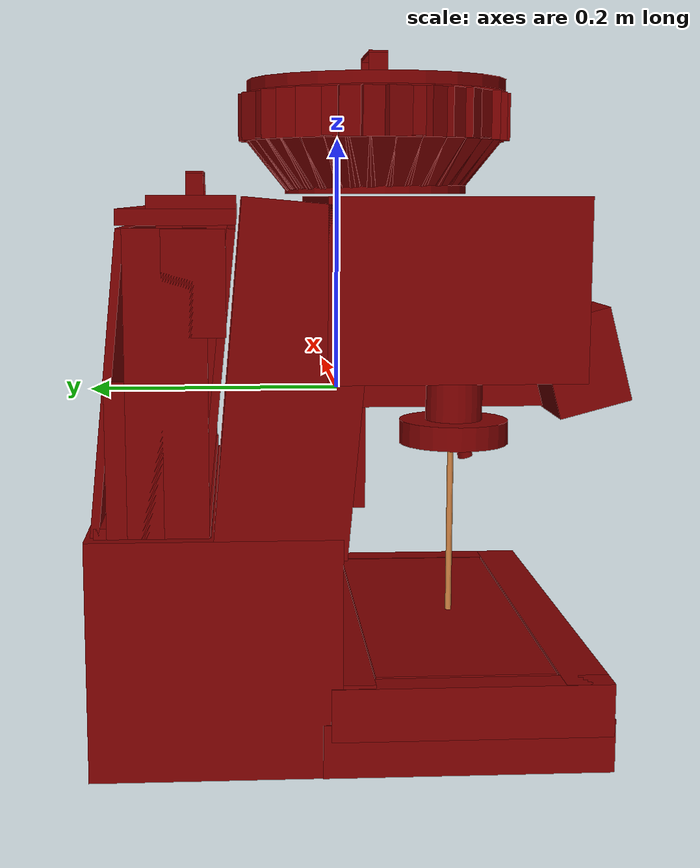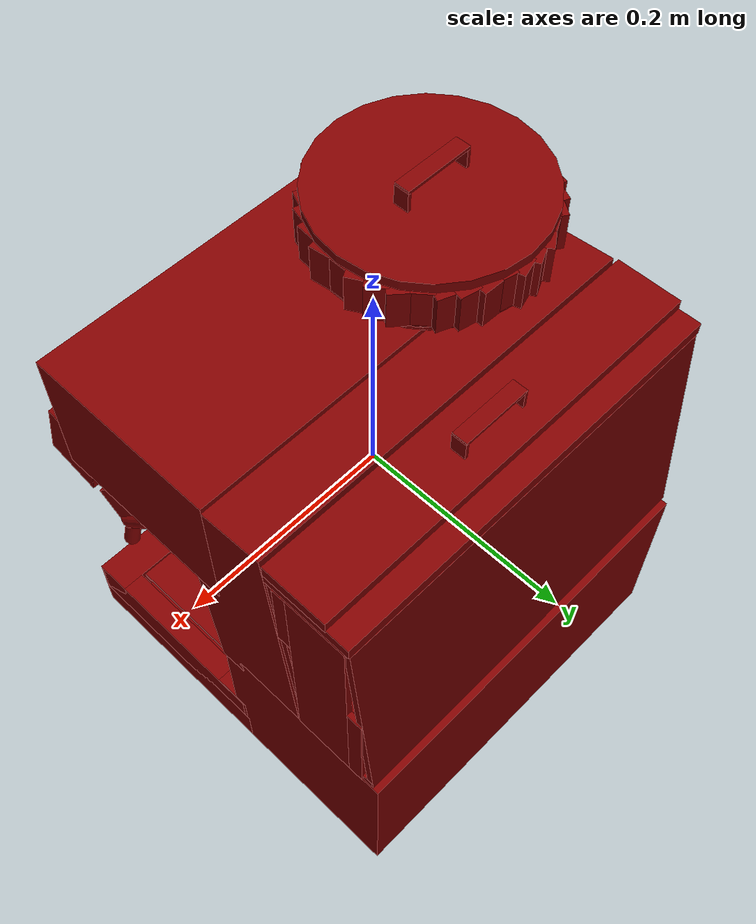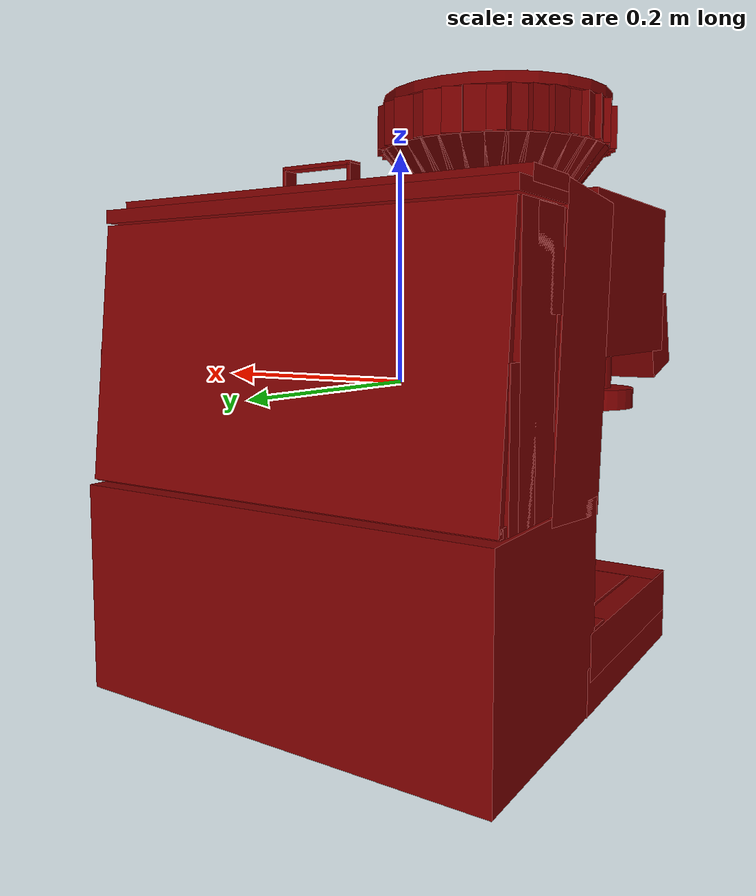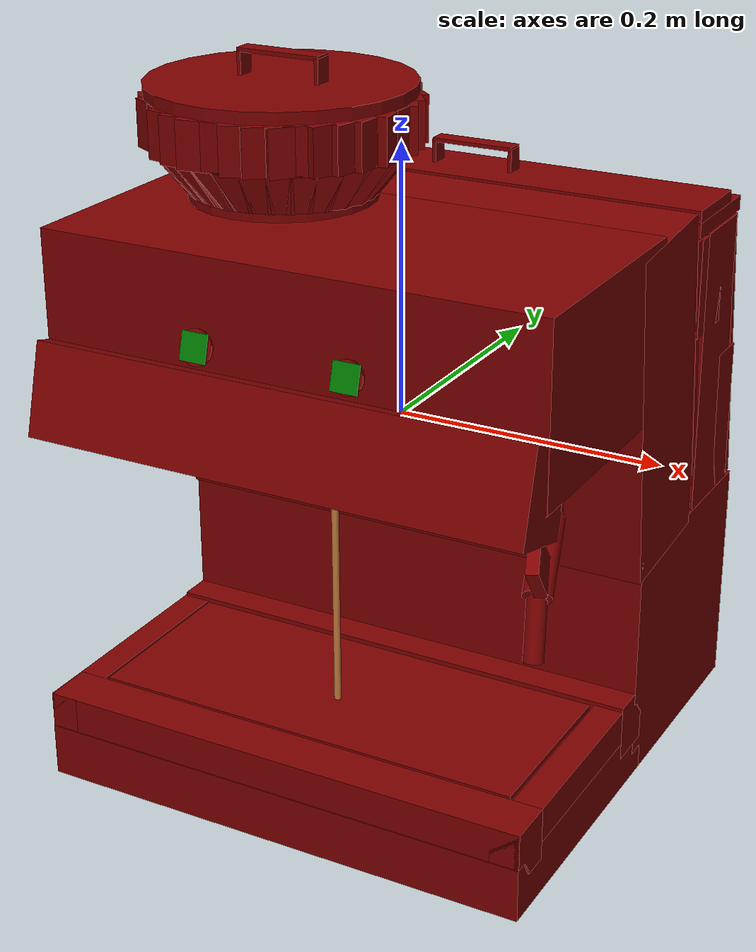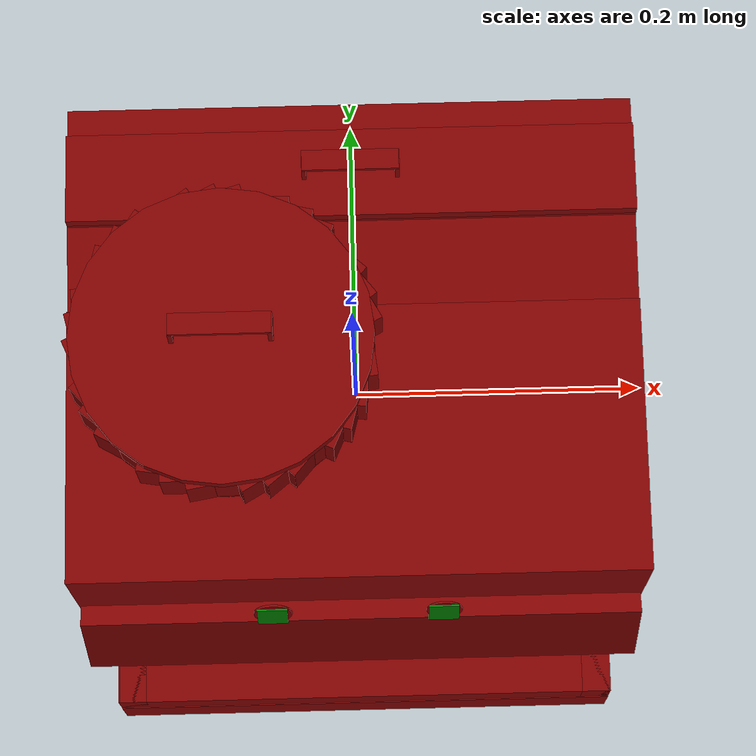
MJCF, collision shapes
<?xml version='1.0' encoding='UTF-8'?>
<mujoco model="model">
  <compiler angle="radian"/>
  <asset>
    <mesh file="visuals/Body001.obj" name="Body001_vis"/>
    <mesh file="visuals/Button001.obj" name="Button001_vis"/>
    <mesh file="visuals/Button002.obj" name="Button002_vis"/>
    <mesh file="visuals/Container001.obj" name="Container001_vis"/>
    <mesh file="visuals/Container002_Clear.obj" name="Container002_Clear_vis"/>
    <mesh file="visuals/Lever001.obj" name="Lever001_vis"/>
    <mesh file="visuals/Lid001.obj" name="Lid001_vis"/>
    <mesh file="visuals/Lid002.obj" name="Lid002_vis"/>
    <mesh file="visuals/Lid003.obj" name="Lid003_vis"/>
    <texture file="visuals/T_BC001.png" name="Body001_material" type="2d"/>
    <material name="Body001_material" rgba="1 1 1 1.0" texture="Body001_material" shininess="0.2512328028678894" specular="0.3103448502657381"/>
    <texture file="visuals/T_BC001.png" name="Button001_material" type="2d"/>
    <material name="Button001_material" rgba="1 1 1 1.0" texture="Button001_material" shininess="0.2512328028678894" specular="0.3103448502657381"/>
    <texture file="visuals/T_BC001.png" name="Button002_material" type="2d"/>
    <material name="Button002_material" rgba="1 1 1 1.0" texture="Button002_material" shininess="0.2512328028678894" specular="0.3103448502657381"/>
    <texture file="visuals/T_BC001.png" name="Container001_material" type="2d"/>
    <material name="Container001_material" rgba="1 1 1 1.0" texture="Container001_material" shininess="0.2512328028678894" specular="0.3103448502657381"/>
    <texture file="visuals/T_BC001.png" name="Lid003_material" type="2d"/>
    <material name="Lid003_material" rgba="1 1 1 1.0" texture="Lid003_material" shininess="0.2512328028678894" specular="0.3103448502657381"/>
    <texture file="visuals/T_BC001.png" name="Container002_Clear_material" type="2d"/>
    <material name="Container002_Clear_material" rgba="1 1 1 0.09661836922168732" texture="Container002_Clear_material" shininess="0.2512328028678894" specular="0.3103448502657381"/>
    <texture file="visuals/T_BC001.png" name="Lid002_material" type="2d"/>
    <material name="Lid002_material" rgba="1 1 1 1.0" texture="Lid002_material" shininess="0.2512328028678894" specular="0.3103448502657381"/>
    <texture file="visuals/T_BC001.png" name="Lever001_material" type="2d"/>
    <material name="Lever001_material" rgba="1 1 1 1.0" texture="Lever001_material" shininess="0.2512328028678894" specular="0.3103448502657381"/>
    <texture file="visuals/T_BC001.png" name="Lid001_material" type="2d"/>
    <material name="Lid001_material" rgba="1 1 1 1.0" texture="Lid001_material" shininess="0.2512328028678894" specular="0.3103448502657381"/>
  </asset>
  <default>
    <default class="visual">
      <geom conaffinity="0" contype="0" group="1" type="mesh"/>
    </default>
    <default class="collision">
      <geom group="0" rgba="0.5 0 0 0.5"/>
    </default>
    <default class="spawn">
      <geom group="0" rgba="1 1 1 0.5" contype="0" conaffinity="0"/>
      <site group="0" rgba="1 1 1 0.5"/>
    </default>
    <default class="region">
      <geom group="1" conaffinity="0" contype="0" rgba="0 1 0 0"/>
    </default>
  </default>
  <worldbody>
    <body>
      <body name="object">
        <geom class="collision" type="box" pos="-0.05731553956866264 -0.17489486932754517 0.09781280159950256" size="0.009943759068846703 0.0005993127706460655 0.009943758137524128" quat="0.9915480613708496 -0.1297398954629898 -0.0 0.0" name="start_button_1" rgba="0.0 0.5 0 0.5"/>
        <geom class="collision" type="box" pos="0.055036868900060654 -0.17489486932754517 0.09781280159950256" size="0.009943759068846703 0.0005993127706460655 0.009943758137524128" quat="0.9915480613708496 -0.1297398954629898 -0.0 0.0" name="start_button_2" rgba="0.0 0.5 0 0.5"/>
        <site type="cylinder" rgba="0.8 0.5 0.25 1" size="0.002555632498115301 0.0979219377040863" pos="-0.001240234705619514 -0.09453067928552628 -0.11024720966815948" name="coffee_liquid"/>
        <site rgba="0 0 0 0" size="0.009999999776482582 0.009999999776482582" pos="-0.0015502932947129011 -0.09508466720581055 -0.1918620616197586" name="receptacle_place_site"/>
        <geom mesh="Body001_vis" type="mesh" solimp="0.998 0.998 0.001" solref="0.001 1" density="100" friction="0.95 0.3 0.1" class="visual" material="Body001_material"/>
        <geom class="collision" type="box" pos="0.0005956803215667605 0.09847386926412582 -0.1688809096813202" size="0.18726329505443573 0.09017781913280487 0.08746477961540222" quat="1.0 0.0 0.0 0.0"/>
        <geom class="collision" type="box" pos="0.0002870087046176195 -0.08299246430397034 -0.2364640086889267" size="0.1875719577074051 0.10524700582027435 0.019881682470440865" quat="1.0 0.0 0.0 0.0"/>
        <geom class="collision" type="box" pos="0.0005956803215667605 -0.16965270042419434 -0.2097156047821045" size="0.18726329505443573 0.017785146832466125 0.019688216969370842" quat="1.0 0.0 0.0 0.0"/>
        <geom class="collision" type="box" pos="0.17701773345470428 -0.08536890894174576 -0.2097156047821045" size="0.010841228999197483 0.1020689383149147 0.019688216969370842" quat="1.0 0.0 0.0 0.0"/>
        <geom class="collision" type="box" pos="-0.17702330648899078 -0.08536890894174576 -0.2097156047821045" size="0.010465281084179878 0.1020689383149147 0.019688216969370842" quat="1.0 0.0 0.0 0.0"/>
        <geom class="collision" type="box" pos="0.0005956803215667605 0.002601444721221924 -0.208379864692688" size="0.18726329505443573 0.017785146832466125 0.02102394960820675" quat="1.0 0.0 0.0 0.0"/>
        <geom class="collision" type="box" pos="0.0005956803215667605 0.04139527305960655 0.029322773218154907" size="0.18726329505443573 0.04702402651309967 0.1219869926571846" quat="0.998981237411499 0.04512740299105644 0.0 0.0"/>
        <geom class="collision" type="box" pos="-0.06237511709332466 0.02061018906533718 -0.03055974468588829" size="0.05326209217309952 0.0336286835372448 0.044288747012615204" quat="1.0 0.0 0.0 0.0"/>
        <geom class="collision" type="box" pos="0.0005956803215667605 -0.07070866972208023 0.09099208563566208" size="0.18726329505443573 0.09017781913280487 0.06404579430818558" quat="1.0 0.0 0.0 0.0"/>
        <geom class="collision" type="box" pos="0.0010465611703693867 -0.07070866972208023 0.06718286871910095" size="0.13032084703445435 0.09017781913280487 0.06404579430818558" quat="1.0 0.0 0.0 0.0"/>
        <geom class="collision" type="box" pos="0.0005956803215667605 -0.15853410959243774 0.04096051678061485" size="0.18604809045791626 0.0257794838398695 0.03353458270430565" quat="0.991567850112915 -0.12958873808383942 -0.0 0.0"/>
        <geom class="collision" type="cylinder" pos="-0.14710915088653564 -0.07347169518470764 0.013286512345075607" size="0.020273976027965546 0.020273976027965546" quat="1.0 0.0 0.0 0.0"/>
        <geom class="collision" type="cylinder" pos="-0.0007574863266199827 -0.09521698206663132 -0.010232677683234215" size="0.011889209970831871 0.005160138476639986" quat="1.0 0.0 0.0 0.0"/>
        <geom class="collision" type="cylinder" pos="-0.0007574864430353045 -0.09521698206663132 0.0003547324158716947" size="0.015668664127588272 0.005908631253987551" quat="1.0 0.0 0.0 0.0"/>
        <geom class="collision" type="cylinder" pos="-0.14710913598537445 -0.07347169518470764 -0.011658534407615662" size="0.03898880258202553 0.008481523022055626" quat="1.0 0.0 0.0 0.0"/>
        <body name="Button001">
          <joint axis="0.0 0.9654118418693542 -0.26072958111763" pos="-0.05705320090055466 -0.17481987178325653 0.09768670052289963" limited="true" name="Button001_joint" range="0.0 0.001" type="slide" damping="1" frictionloss="1" armature=".01" stiffness="0.2" springref="-0.1"/>
          <geom mesh="Button001_vis" type="mesh" solimp="0.998 0.998 0.001" solref="0.001 1" density="100" friction="0.95 0.3 0.1" class="visual" material="Button001_material"/>
          <geom class="collision" type="cylinder" pos="-0.05699922516942024 -0.17273665964603424 0.09711688756942749" size="0.012503908947110176 0.0008548264158889651" quat="0.7843735814094543 0.6202887296676636 0.0 0.0"/>
        </body>
        <body name="Button002">
          <joint axis="0.0 0.969615638256073 -0.2446330189704895" pos="0.05544610321521759 -0.17480553686618805 0.09767358005046844" limited="true" name="Button002_joint" range="0.0 0.001" type="slide" damping="1" frictionloss="1" armature=".01" stiffness="0.2" springref="-0.1"/>
          <geom mesh="Button002_vis" type="mesh" solimp="0.998 0.998 0.001" solref="0.001 1" density="100" friction="0.95 0.3 0.1" class="visual" material="Button002_material"/>
          <geom class="collision" type="cylinder" pos="0.05548488348722458 -0.17290781438350677 0.09739619493484497" size="0.011679901741445065 0.0007984933909028769" quat="0.7843735814094543 0.6202887296676636 0.0 0.0"/>
        </body>
        <body name="Container001">
          <joint axis="0.0 0.0 1.0" pos="-0.08088400959968567 -0.021134506911039352 0.1826155036687851" limited="true" name="Container001_joint" range="0.0 0.05" type="slide" damping="1" frictionloss="1" armature=".01" stiffness="0.05"/>
          <geom mesh="Container001_vis" type="mesh" solimp="0.998 0.998 0.001" solref="0.001 1" density="100" friction="0.95 0.3 0.1" class="visual" material="Container001_material"/>
          <geom class="collision" type="cylinder" pos="-0.08120039105415344 -0.022443460300564766 0.15976351499557495" size="0.06728342175483704 0.0029134033247828484" quat="1.0 0.0 0.0 0.0"/>
          <geom class="collision" type="box" pos="0.011045917868614197 -0.0210826825350523 0.21189676225185394" size="0.0025177588686347008 0.008883832022547722 0.016946708783507347" quat="1.0 0.0 0.0 0.0"/>
          <geom class="collision" type="box" pos="-0.003041110932826996 -0.0210826825350523 0.17911913990974426" size="0.0025177588686347008 0.008883832022547722 0.02360411360859871" quat="0.9425100684165955 0.0 0.33417776226997375 0.0"/>
          <geom class="collision" type="box" pos="0.00973470788449049 -0.005611563101410866 0.21189676225185394" size="0.005319920834153891 0.009216169826686382 0.016946708783507347" quat="0.9680494666099548 0.0 0.0 0.2507592737674713"/>
          <geom class="collision" type="box" pos="0.006011629011482 0.008921580389142036 0.21189676225185394" size="0.005319920834153891 0.009216169826686382 0.016946708783507347" quat="0.9443601369857788 0.0 0.0 0.32891324162483215"/>
          <geom class="collision" type="box" pos="-0.0005275303265079856 0.023570934310555458 0.21189676225185394" size="0.005319920834153891 0.009216169826686382 0.016946708783507347" quat="0.9120593070983887 0.0 0.0 0.41005831956863403"/>
          <geom class="collision" type="box" pos="-0.009962059557437897 0.0374082550406456 0.21189676225185394" size="0.0025177588686347008 0.008883832022547722 0.016946708783507347" quat="0.9411371946334839 0.0 0.0 0.33802488446235657"/>
          <geom class="collision" type="box" pos="-0.020817214623093605 0.048509631305933 0.21189676225185394" size="0.005319920834153891 0.009216169826686382 0.016946708783507347" quat="0.8263044357299805 0.0 0.0 0.5632237195968628"/>
          <geom class="collision" type="box" pos="-0.03293629363179207 0.05735280364751816 0.21189676225185394" size="0.005319920834153891 0.009216169826686382 0.016946708783507347" quat="0.7775915861129761 0.0 0.0 0.6287696957588196"/>
          <geom class="collision" type="box" pos="-0.047301843762397766 0.06449387967586517 0.21189676225185394" size="0.005319921299815178 0.009216169826686382 0.016946708783507347" quat="0.7197629809379578 0.0 0.0 0.6942198872566223"/>
          <geom class="collision" type="box" pos="-0.061056844890117645 0.0686836689710617 0.21189676225185394" size="0.0025177588686347008 0.008883832022547722 0.016946708783507347" quat="0.7796400189399719 0.0 0.0 0.6262279748916626"/>
          <geom class="collision" type="box" pos="-0.07644665241241455 0.07074007391929626 0.21189676225185394" size="0.005319920834153891 0.009216169826686382 0.016946708783507347" quat="0.5976976156234741 0.0 0.0 0.8017216324806213"/>
          <geom class="collision" type="box" pos="-0.09144072979688644 0.07023908197879791 0.21189676225185394" size="0.005319920834153891 0.009216169826686382 0.016946708783507347" quat="0.5302860140800476 0.0 0.0 0.8478188514709473"/>
          <geom class="collision" type="box" pos="-0.10715565085411072 0.06701335310935974 0.21189676225185394" size="0.005319920834153891 0.009216169826686382 0.016946708783507347" quat="0.45428791642189026 0.0 0.0 0.8908549547195435"/>
          <geom class="collision" type="box" pos="-0.12269163131713867 0.06079062446951866 0.21189676225185394" size="0.0025177588686347008 0.008883832022547722 0.016946708783507347" quat="0.5221222043037415 0.0 0.0 0.8528707027435303"/>
          <geom class="collision" type="box" pos="-0.1358739733695984 0.05258695408701897 0.21189676225185394" size="0.005319920834153891 0.009216169826686382 0.016946708783507347" quat="0.2915749251842499 0.0 0.0 0.9565479755401611"/>
          <geom class="collision" type="box" pos="-0.14712411165237427 0.042661819607019424 0.21189676225185394" size="0.005319920834153891 0.009216169826686382 0.016946708783507347" quat="0.21255096793174744 0.0 0.0 0.9771499633789062"/>
          <geom class="collision" type="box" pos="-0.1571970283985138 0.030175814405083656 0.21189676225185394" size="0.005319920834153891 0.009216169826686382 0.016946708783507347" quat="0.12647965550422668 0.0 0.0 0.9919692277908325"/>
          <geom class="collision" type="box" pos="-0.16437631845474243 0.017390087246894836 0.21189676225185394" size="0.0025177591014653444 0.008883832022547722 0.016946708783507347" quat="0.2142237275838852 0.0 0.0 0.9767846465110779"/>
          <geom class="collision" type="box" pos="-0.16966012120246887 0.0027902070432901382 0.21189676225185394" size="0.005319920834153891 0.009216169826686382 0.016946708783507347" quat="0.03755873441696167 0.0 -0.0 -0.9992944002151489"/>
          <geom class="collision" type="box" pos="-0.17236089706420898 -0.011967147700488567 0.21189676225185394" size="0.005319920834153891 0.009216169826686382 0.016946708783507347" quat="0.11897314339876175 0.0 -0.0 -0.9928974509239197"/>
          <geom class="collision" type="box" pos="-0.1725526750087738 -0.028008582070469856 0.21189676225185394" size="0.005319921299815178 0.009216169826686382 0.016946708783507347" quat="0.20515407621860504 0.0 -0.0 -0.9787296652793884"/>
          <geom class="collision" type="box" pos="-0.17076066136360168 -0.04040377214550972 0.21189676225185394" size="0.0025177588686347008 0.008883832022547722 0.016946708783507347" quat="0.10567775368690491 0.0 -0.0 -0.9944004416465759"/>
          <geom class="collision" type="box" pos="-0.16622713208198547 -0.0552537702023983 0.21189676225185394" size="0.005319920834153891 0.009216169826686382 0.016946708783507347" quat="0.3516564965248108 0.0 -0.0 -0.936129093170166"/>
          <geom class="collision" type="box" pos="-0.15953275561332703 -0.0686798244714737 0.21189676225185394" size="0.005319920834153891 0.009216169826686382 0.016946708783507347" quat="0.4268691837787628 0.0 -0.0 -0.9043133854866028"/>
          <geom class="collision" type="box" pos="-0.150060772895813 -0.08162760734558105 0.21189676225185394" size="0.005319920834153891 0.009216169826686382 0.016946708783507347" quat="0.5041465759277344 0.0 -0.0 -0.8636181354522705"/>
          <geom class="collision" type="box" pos="-0.13788370788097382 -0.09320861101150513 0.21189676225185394" size="0.0025177588686347008 0.008883832022547722 0.016946708783507347" quat="0.4358704090118408 0.0 -0.0 -0.9000094532966614"/>
          <geom class="collision" type="box" pos="-0.1249324381351471 -0.10177251696586609 0.21189676225185394" size="0.005319921299815178 0.009216169826686382 0.016946708783507347" quat="0.6476299166679382 0.0 -0.0 -0.7619550228118896"/>
          <geom class="collision" type="box" pos="-0.11122168600559235 -0.10786250233650208 0.21189676225185394" size="0.005319921299815178 0.009216169826686382 0.016946708783507347" quat="0.7076437473297119 0.0 -0.0 -0.7065694332122803"/>
          <geom class="collision" type="box" pos="-0.09567367285490036 -0.11181513965129852 0.21189676225185394" size="0.005319920834153891 0.009216169826686382 0.016946708783507347" quat="0.7665960192680359 0.0 -0.0 -0.6421297192573547"/>
          <geom class="collision" type="box" pos="-0.07961931824684143 -0.11300390958786011 0.21189676225185394" size="0.002517758635804057 0.008883832022547722 0.016946708783507347" quat="0.7119541168212891 0.0 -0.0 -0.7022259831428528"/>
          <geom class="collision" type="box" pos="-0.06416767090559006 -0.1114799827337265 0.21189676225185394" size="0.005319920834153891 0.009216169826686382 0.016946708783507347" quat="0.8652965426445007 0.0 -0.0 -0.5012602806091309"/>
          <geom class="collision" type="box" pos="-0.04968713968992233 -0.10755732655525208 0.21189676225185394" size="0.005319920834153891 0.009216169826686382 0.016946708783507347" quat="0.9033124446868896 0.0 -0.0 -0.4289831817150116"/>
          <geom class="collision" type="box" pos="-0.03512915223836899 -0.1008172482252121 0.21189676225185394" size="0.005319920368492603 0.009216169826686382 0.016946708783507347" quat="0.9372979998588562 0.0 -0.0 -0.34852901101112366"/>
          <geom class="collision" type="box" pos="-0.025742948055267334 -0.09463930130004883 0.21189676225185394" size="0.0025177588686347008 0.008883832022547722 0.016946708783507347" quat="0.8943758606910706 0.0 -0.0 -0.4473162889480591"/>
          <geom class="collision" type="box" pos="-0.014150390401482582 -0.08431030809879303 0.21189676225185394" size="0.005319920834153891 0.009216169826686382 0.016946708783507347" quat="0.9779688119888306 0.0 -0.0 -0.20875108242034912"/>
          <geom class="collision" type="box" pos="-0.0047550443559885025 -0.07261413335800171 0.21189676225185394" size="0.005319920834153891 0.009216169826686382 0.016946708783507347" quat="0.9917411208152771 0.0 -0.0 -0.12825575470924377"/>
          <geom class="collision" type="box" pos="0.0030441484414041042 -0.05859497934579849 0.21189676225185394" size="0.005319921299815178 0.009216169826686382 0.016946708783507347" quat="0.9991495609283447 0.0 -0.0 -0.041232671588659286"/>
          <geom class="collision" type="box" pos="0.009091091342270374 -0.039939746260643005 0.21189676225185394" size="0.005319920834153891 0.009216169826686382 0.016946708783507347" quat="0.9978477358818054 0.0 0.0 0.06557342410087585"/>
          <geom class="collision" type="box" pos="-0.004230670630931854 -0.0075260940939188 0.17911916971206665" size="0.0025177588686347008 0.008883832022547722 0.02360411360859871" quat="0.9389024376869202 -0.029210906475782394 0.3328985869884491 0.08238600194454193"/>
          <geom class="collision" type="box" pos="-0.008440136909484863 0.00740242563188076 0.17911916971206665" size="0.0025177588686347008 0.008883832022547722 0.023604117333889008" quat="0.9260232448577881 -0.062231529504060745 0.32833215594291687 0.17551690340042114"/>
          <geom class="collision" type="box" pos="-0.015344150364398956 0.020917821675539017 0.17911916971206665" size="0.0025177588686347008 0.008883832022547722 0.02360411360859871" quat="0.9045029282569885 -0.0939418226480484 0.3207018971443176 0.264952152967453"/>
          <geom class="collision" type="box" pos="-0.022917699068784714 0.03087330237030983 0.17911913990974426" size="0.0025177588686347008 0.008883832022547722 0.02360411360859871" quat="0.8802907466888428 -0.11940537393093109 0.31211715936660767 0.3367691934108734"/>
          <geom class="collision" type="box" pos="-0.03285181149840355 0.04017435386776924 0.17911916971206665" size="0.0025177588686347008 0.008883832022547722 0.02360411360859871" quat="0.8474838137626648 -0.14623087644577026 0.30048510432243347 0.4124274253845215"/>
          <geom class="collision" type="box" pos="-0.04595041647553444 0.04848139360547066 0.17911916971206665" size="0.0025177591014653444 0.008883832022547722 0.02360411360859871" quat="0.802178144454956 -0.1754400134086609 0.284421443939209 0.49480852484703064"/>
          <geom class="collision" type="box" pos="-0.06011234223842621 0.05393769219517708 0.17911916971206665" size="0.0025177588686347008 0.008883832022547722 0.02360411360859871" quat="0.7501221895217896 -0.20233066380023956 0.2659643888473511 0.5706504583358765"/>
          <geom class="collision" type="box" pos="-0.07320435345172882 0.056380484253168106 0.17911913990974426" size="0.0025177591014653444 0.008883832022547722 0.02360411360859871" quat="0.6985567808151245 -0.22434072196483612 0.2476813793182373 0.6327270865440369"/>
          <geom class="collision" type="box" pos="-0.08681216090917587 0.056534167379140854 0.17911915481090546" size="0.0025177588686347008 0.008883832022547722 0.023604117333889008" quat="0.6405758261680603 -0.24513199925422668 0.22712351381778717 0.6913666725158691"/>
          <geom class="collision" type="box" pos="-0.10208314657211304 0.053818028420209885 0.17911916971206665" size="0.0025177588686347008 0.008883832022547722 0.023604117333889008" quat="0.5685093402862549 -0.2665402293205261 0.2015715092420578 0.7517461776733398"/>
          <geom class="collision" type="box" pos="-0.11621372401714325 0.04828108474612236 0.17911916971206665" size="0.0025177588686347008 0.008883832022547722 0.023604117333889008" quat="0.4925194978713989 -0.28492048382759094 0.17462843656539917 0.8035855889320374"/>
          <geom class="collision" type="box" pos="-0.1270158737897873 0.0416179783642292 0.17911913990974426" size="0.0025177588686347008 0.008883832022547722 0.023604117333889008" quat="0.4253699779510498 -0.29820820689201355 0.15081976354122162 0.8410622477531433"/>
          <geom class="collision" type="box" pos="-0.13723042607307434 0.03262581676244736 0.17911915481090546" size="0.0025177588686347008 0.008883832022547722 0.02360411360859871" quat="0.3502236604690552 -0.31025010347366333 0.12417582422494888 0.8750249147415161"/>
          <geom class="collision" type="box" pos="-0.14676034450531006 0.02038813754916191 0.17911916971206665" size="0.0025177588686347008 0.008883832022547722 0.023604117333889008" quat="0.2613043189048767 -0.3210778832435608 0.09264842420816422 0.9055635333061218"/>
          <geom class="collision" type="box" pos="-0.15355518460273743 0.006817538291215897 0.17911916971206665" size="0.0025177588686347008 0.008883832022547722 0.02360411360859871" quat="0.17178313434123993 -0.32858020067214966 0.060907669365406036 0.9267231822013855"/>
          <geom class="collision" type="box" pos="-0.1570471227169037 -0.004998419433832169 0.17911913990974426" size="0.0025177588686347008 0.008883832022547722 0.02360411360859871" quat="0.09790248423814774 -0.33237001299858093 0.034712448716163635 0.9374114871025085"/>
          <geom class="collision" type="box" pos="-0.1586843580007553 -0.018508249893784523 0.17911915481090546" size="0.0025177588686347008 0.008883832022547722 0.023604117333889008" quat="0.015587513335049152 -0.3341320753097534 0.005526732187718153 0.9423811435699463"/>
          <geom class="collision" type="box" pos="-0.15765032172203064 -0.033984411507844925 0.17911916971206665" size="0.0025177588686347008 0.008883832022547722 0.02360411360859871" quat="0.0783776268362999 0.33302003145217896 0.02778967283666134 -0.9392456412315369"/>
          <geom class="collision" type="box" pos="-0.15368792414665222 -0.04863467440009117 0.17911916971206665" size="0.0025177588686347008 0.008883832022547722 0.02360411360859871" quat="0.1695644110441208 0.3287251591682434 0.06012101471424103 -0.9271316528320312"/>
          <geom class="collision" type="box" pos="-0.14685240387916565 -0.062406931072473526 0.17911913990974426" size="0.0025177588686347008 0.008883832022547722 0.02360411360859871" quat="0.2602975070476532 0.3211807310581207 0.09229147434234619 -0.9058534502983093"/>
          <geom class="collision" type="box" pos="-0.13864755630493164 -0.07326403260231018 0.17911915481090546" size="0.0025177588686347008 0.008883832022547722 0.02360411360859871" quat="0.3384827673435211 0.3118840456008911 0.12001290917396545 -0.8796332478523254"/>
          <geom class="collision" type="box" pos="-0.1271551549434662 -0.08368062973022461 0.17911916971206665" size="0.0025177588686347008 0.008883832022547722 0.023604117333889008" quat="0.42443493008613586 0.2983756959438324 0.1504882574081421 -0.841534435749054"/>
          <geom class="collision" type="box" pos="-0.114129438996315 -0.09146919846534729 0.17911915481090546" size="0.0025177588686347008 0.008883832022547722 0.02360411360859871" quat="0.5044483542442322 0.28228455781936646 0.1788579374551773 -0.7961514592170715"/>
          <geom class="collision" type="box" pos="-0.10017720609903336 -0.0964968204498291 0.17911913990974426" size="0.0025177588686347008 0.008883832022547722 0.023604117333889008" quat="0.5779948234558105 0.26396313309669495 0.20493470132350922 -0.7444778084754944"/>
          <geom class="collision" type="box" pos="-0.08674878627061844 -0.09870435297489166 0.17911915481090546" size="0.0025177588686347008 0.008883832022547722 0.02360411360859871" quat="0.6408580541610718 0.24503925442695618 0.22722360491752625 -0.6911050081253052"/>
          <geom class="collision" type="box" pos="-0.07124270498752594 -0.09832622110843658 0.17911916971206665" size="0.0025177588686347008 0.008883832022547722 0.02360411360859871" quat="0.7065231204032898 0.2211822271347046 0.25050586462020874 -0.62381911277771"/>
          <geom class="collision" type="box" pos="-0.05643787607550621 -0.09498737752437592 0.17911915481090546" size="0.0025177588686347008 0.008883832953870296 0.023604117333889008" quat="0.7639696598052979 0.19570882618427277 0.2708742022514343 -0.5519742965698242"/>
          <geom class="collision" type="box" pos="-0.04270988330245018 -0.08892259001731873 0.17911913990974426" size="0.0025177588686347008 0.008883832022547722 0.023604117333889008" quat="0.813621461391449 0.16868534684181213 0.2884788513183594 -0.4757576882839203"/>
          <geom class="collision" type="box" pos="-0.031478751450777054 -0.08123779296875 0.17911915481090546" size="0.0025177588686347008 0.008883832022547722 0.023604117333889008" quat="0.852093517780304 0.14282356202602386 0.3021196126937866 -0.40281739830970764"/>
          <geom class="collision" type="box" pos="-0.020532876253128052 -0.07024829089641571 0.17911916971206665" size="0.0025177588686347008 0.008883832022547722 0.02360411360859871" quat="0.8879861235618591 0.11201335489749908 0.31484565138816833 -0.31592077016830444"/>
          <geom class="collision" type="box" pos="-0.012139968574047089 -0.05760351940989494 0.17911915481090546" size="0.002517758635804057 0.008883832022547722 0.02360411360859871" quat="0.9145535826683044 0.08078785985708237 0.3242655098438263 -0.22785286605358124"/>
          <geom class="collision" type="box" pos="-0.005509071052074432 -0.04052834212779999 0.17911915481090546" size="0.0025177588686347008 0.008883832953870296 0.023604117333889008" quat="0.9350098371505737 0.04207469895482063 0.3315185010433197 -0.11866685748100281"/>
          <body name="Lid003">
            <joint axis="0.0 0.0 1.0" pos="-0.08088402450084686 -0.021134622395038605 0.2283111810684204" limited="true" name="Lid003_joint" range="0.0 0.05" type="slide" damping="1" frictionloss="1" armature=".01" stiffness="0.05"/>
            <geom mesh="Lid003_vis" type="mesh" solimp="0.998 0.998 0.001" solref="0.001 1" density="100" friction="0.95 0.3 0.1" class="visual" material="Lid003_material"/>
            <geom class="collision" type="cylinder" pos="-0.08120039105415344 -0.022443460300564766 0.23436468839645386" size="0.09531017392873764 0.004305567126721144" quat="1.0 0.0 0.0 0.0"/>
            <geom class="collision" type="box" pos="-0.08114229142665863 -0.02110946923494339 0.2564585506916046" size="0.03191326558589935 0.006912460085004568 0.0014715195866301656" quat="1.0 0.0 0.0 0.0"/>
            <geom class="collision" type="box" pos="-0.05017257481813431 -0.02110946923494339 0.24709953367710114" size="0.009245697408914566 0.006912460085004568 0.0014715205179527402" quat="0.7071068286895752 -0.0 0.7071067690849304 0.0"/>
            <geom class="collision" type="box" pos="-0.11175815016031265 -0.02110946923494339 0.24709953367710114" size="0.009245697408914566 0.006912460085004568 0.0014715205179527402" quat="0.7071068286895752 -0.0 0.7071067690849304 0.0"/>
          </body>
        </body>
        <body name="Container002_Clear">
          <joint axis="0.0 0.0 1.0" pos="0.0021799164824187756 0.1364610493183136 0.04990134760737419" limited="true" name="Container002_Clear_joint" range="0.0 0.05" type="slide" damping="1" frictionloss="1" armature=".01" stiffness="0.05"/>
          <geom mesh="Container002_Clear_vis" type="mesh" solimp="0.998 0.998 0.001" solref="0.001 1" density="100" friction="0.95 0.3 0.1" class="visual" material="Container002_Clear_material"/>
          <geom class="collision" type="box" pos="0.0005956803215667605 0.14072087407112122 -0.07508264482021332" size="0.18726329505443573 0.04043811559677124 0.0037519161123782396" quat="1.0 0.0 0.0 0.0"/>
          <geom class="collision" type="box" pos="0.0005956803215667605 0.09539420157670975 0.027869747951626778" size="0.18726329505443573 0.0029874728061258793 0.10616868734359741" quat="0.9987088441848755 0.050799742341041565 0.0 0.0"/>
          <geom class="collision" type="box" pos="0.0005956803215667605 0.16970103979110718 0.027869747951626778" size="0.18726329505443573 0.0029874728061258793 0.10616868734359741" quat="0.9987088441848755 0.050799742341041565 0.0 0.0"/>
          <geom class="collision" type="box" pos="0.18647509813308716 0.12947781383991241 0.02770845964550972" size="0.002647899556905031 0.028295280411839485 0.10632997006177902" quat="1.0 0.0 0.0 0.0"/>
          <geom class="collision" type="box" pos="0.18647509813308716 0.1521751880645752 -0.024009129032492638" size="0.002647899556905031 0.019864827394485474 0.05461238697171211" quat="1.0 0.0 0.0 0.0"/>
          <geom class="collision" type="box" pos="0.18647509813308716 0.11021656543016434 0.09690392762422562" size="0.002647899556905031 0.02177879400551319 0.03648601472377777" quat="1.0 0.0 0.0 0.0"/>
          <geom class="collision" type="box" pos="-0.18534816801548004 0.12947781383991241 0.02770845964550972" size="0.002647899556905031 0.028295280411839485 0.10632997006177902" quat="1.0 0.0 0.0 0.0"/>
          <geom class="collision" type="box" pos="-0.18534818291664124 0.1521751880645752 -0.024009129032492638" size="0.002647899556905031 0.019864827394485474 0.05461238697171211" quat="1.0 0.0 0.0 0.0"/>
          <geom class="collision" type="box" pos="-0.18534818291664124 0.11021656543016434 0.09690392762422562" size="0.002647899556905031 0.02177879400551319 0.03648601472377777" quat="1.0 0.0 0.0 0.0"/>
          <body name="Lid002">
            <joint axis="0.0 0.0 1.0" pos="0.00011805061512859538 0.12645626068115234 0.1448720097541809" limited="true" name="Lid002_joint" range="0.0 0.05" type="slide" damping="1" frictionloss="1" armature=".01" stiffness="0.05"/>
            <geom mesh="Lid002_vis" type="mesh" solimp="0.998 0.998 0.001" solref="0.001 1" density="100" friction="0.95 0.3 0.1" class="visual" material="Lid002_material"/>
            <geom class="collision" type="box" pos="0.0006266789860092103 0.12161852419376373 0.14132532477378845" size="0.188495472073555 0.04043811559677124 0.005481009371578693" quat="1.0 0.0 0.0 0.0"/>
            <geom class="collision" type="box" pos="0.0006266789860092103 0.11115370690822601 0.14994576573371887" size="0.188495472073555 0.02997329831123352 0.005931871477514505" quat="1.0 0.0 0.0 0.0"/>
            <geom class="collision" type="box" pos="0.0004869838594458997 0.11341757327318192 0.1727924644947052" size="0.03191326558589935 0.006912460085004568 0.0014715195866301656" quat="1.0 0.0 0.0 0.0"/>
            <geom class="collision" type="box" pos="0.031456686556339264 0.11341757327318192 0.16403648257255554" size="0.008642662316560745 0.006912460085004568 0.001471520634368062" quat="0.7071068286895752 -0.0 0.7071067690849304 0.0"/>
            <geom class="collision" type="box" pos="-0.03012889064848423 0.11341757327318192 0.16403648257255554" size="0.008642662316560745 0.006912460085004568 0.001471520634368062" quat="0.7071068286895752 -0.0 0.7071067690849304 0.0"/>
          </body>
        </body>
        <body name="Lever001">
          <joint axis="0.0 0.0 -1.0" pos="0.1531248390674591 -0.07473723590373993 -0.054121408611536026" limited="true" name="Lever001_joint" range="0.0 1.0471975511965976" type="hinge" damping="1" frictionloss="1" armature=".01" stiffness="0.05"/>
          <geom mesh="Lever001_vis" type="mesh" solimp="0.998 0.998 0.001" solref="0.001 1" density="100" friction="0.95 0.3 0.1" class="visual" material="Lever001_material"/>
          <geom class="collision" type="cylinder" pos="0.16874107718467712 -0.1305498480796814 -0.0692165195941925" size="0.007087151985615492 0.023188907653093338" quat="0.9922774434089661 -0.11838628351688385 -0.036755021661520004 -0.004385155159980059"/>
          <geom class="collision" type="cylinder" pos="0.16171236336231232 -0.10460507124662399 -0.03143441677093506" size="0.010293136350810528 0.03046964481472969" quat="0.8796591758728027 -0.4593457281589508 -0.08021809905767441 0.09362836182117462"/>
          <geom class="collision" type="cylinder" pos="0.15357057750225067 -0.07439703494310379 0.0037187831476330757" size="0.007087151985615492 0.021300211548805237" quat="1.0 0.0 0.0 0.0"/>
          <geom class="collision" type="box" pos="0.16965781152248383 -0.13112936913967133 -0.024648938328027725" size="0.0044196778908371925 0.014198829419910908 0.016110112890601158" quat="0.9358600378036499 0.32096096873283386 -0.020227991044521332 0.14401684701442719"/>
        </body>
        <body name="Lid001">
          <joint axis="0.0 0.0 1.0" pos="0.01887998729944229 -0.08526836335659027 -0.19173848628997803" limited="true" name="Lid001_joint" range="0.0 0.05" type="slide" damping="1" frictionloss="1" armature=".01" stiffness="0.05"/>
          <geom mesh="Lid001_vis" type="mesh" solimp="0.998 0.998 0.001" solref="0.001 1" density="100" friction="0.95 0.3 0.1" class="visual" material="Lid001_material"/>
          <geom class="collision" type="box" pos="-0.0004637267265934497 -0.08348383009433746 -0.19167374074459076" size="0.1635250598192215 0.06645692139863968 0.0020195816177874804" quat="1.0 0.0 0.0 0.0"/>
        </body>
        <geom class="region" name="reg_main" type="box" pos="3.725290298461914e-09 0.0 -0.009589120745658875" size="0.18924757838249207 0.18927913904190063 0.24825941026210785"/>
      </body>
    </body>
  </worldbody>
  <actuator>
    <motor name="Button001_joint_actuator" joint="Button001_joint" gear="0.5"/>
    <motor name="Button002_joint_actuator" joint="Button002_joint" gear="0.5"/>
    <motor name="Container001_joint_actuator" joint="Container001_joint" gear="30"/>
    <motor name="Container002_Clear_joint_actuator" joint="Container002_Clear_joint" gear="100"/>
    <motor name="Lever001_joint_actuator" joint="Lever001_joint" gear="10"/>
    <motor name="Lid001_joint_actuator" joint="Lid001_joint" gear="10"/>
    <motor name="Lid003_joint_actuator" joint="Lid003_joint" gear="10"/>
    <motor name="Lid002_joint_actuator" joint="Lid002_joint" gear="10"/>
  </actuator>
</mujoco>
